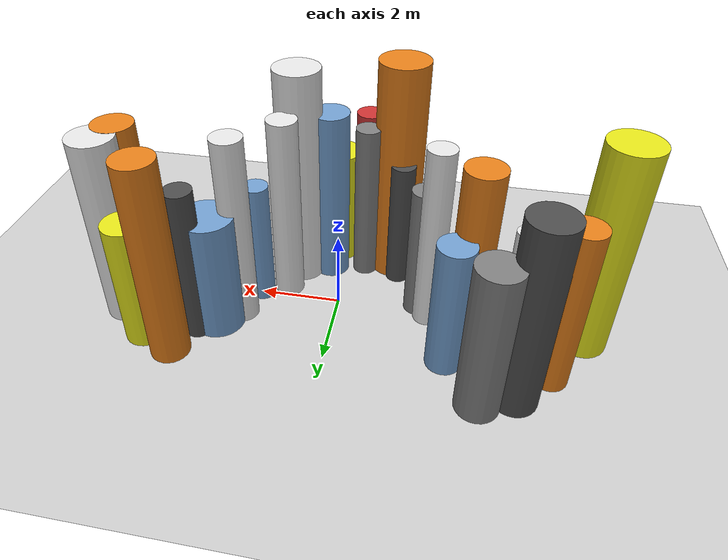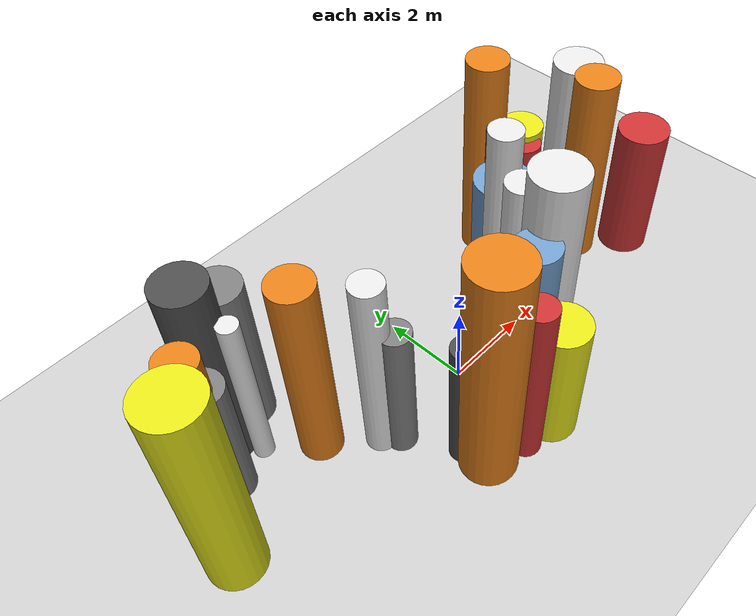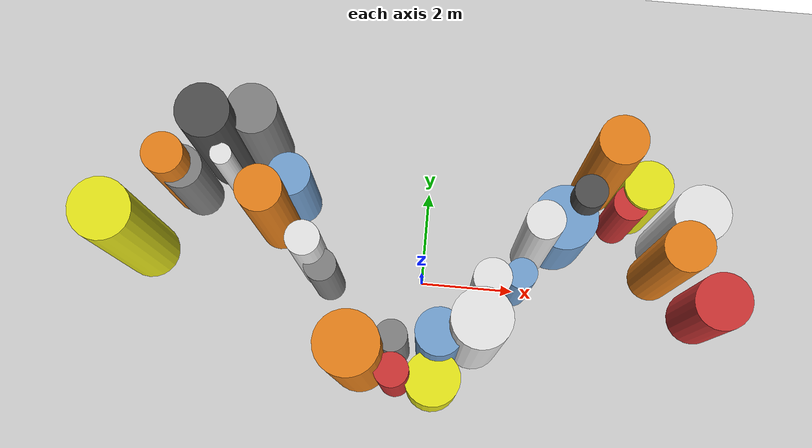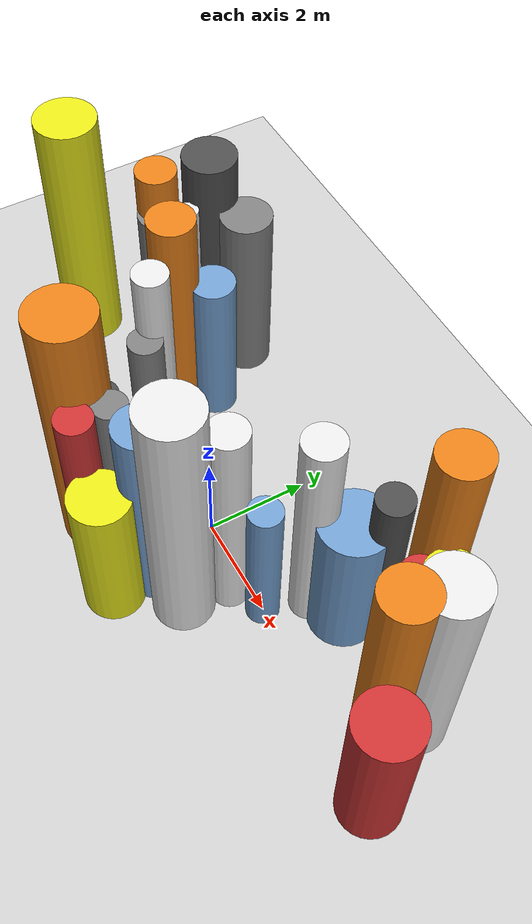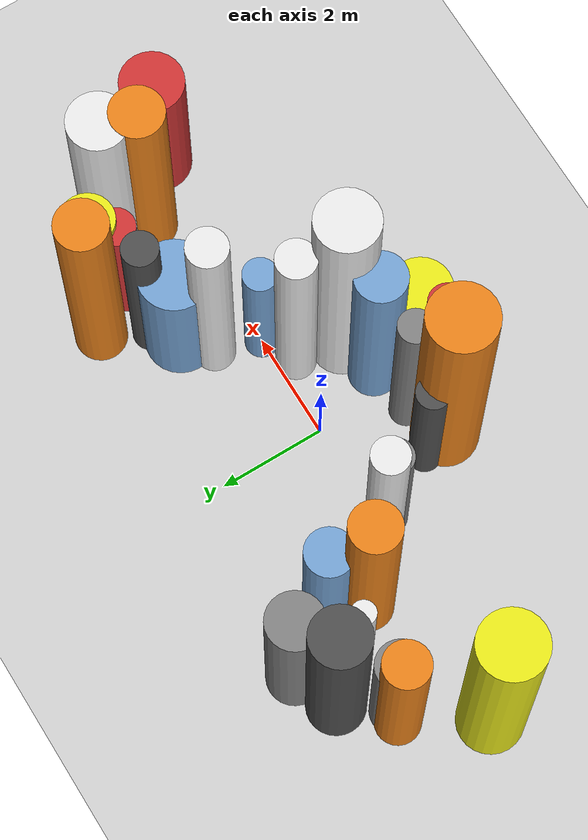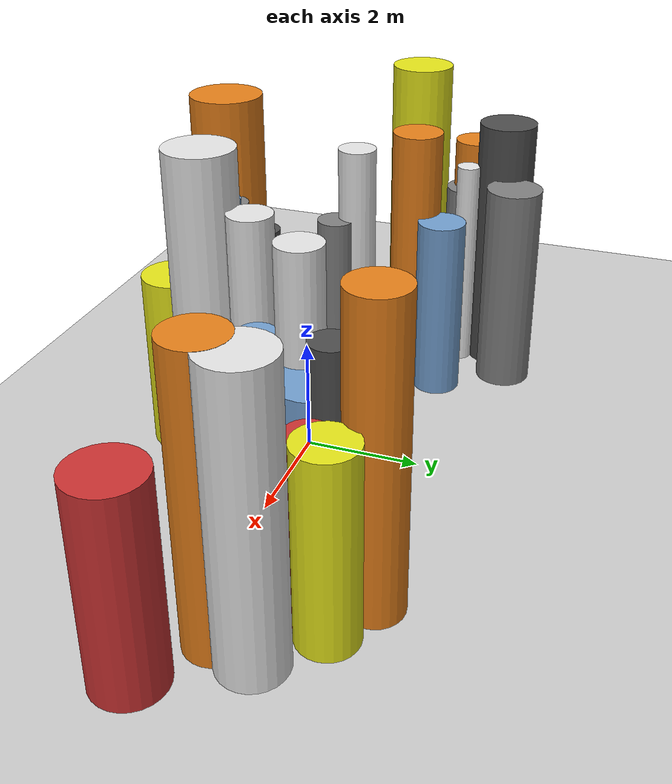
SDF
<?xml version='1.0'?>
<sdf version='1.6'>
  <world name='routeA_rl_v1__dense_recovery__rl_test__s_turn_multi_obstacle__000117'>
    <!-- Sun light -->
    <light name='sun' type='directional'>
      <cast_shadows>1</cast_shadows>
      <pose>0 0 10 0 0 0</pose>
      <diffuse>0.8 0.8 0.8 1</diffuse>
      <specular>0.2 0.2 0.2 1</specular>
      <attenuation>
        <range>1000</range>
        <constant>0.9</constant>
        <linear>0.01</linear>
        <quadratic>0.001</quadratic>
      </attenuation>
      <direction>-0.5 0.1 -0.9</direction>
    </light>

    <!-- Ground plane -->
    <model name='ground_plane'>
      <static>1</static>
      <link name='link'>
        <collision name='collision'>
          <geometry>
            <plane>
              <normal>0 0 1</normal>
              <size>100 100</size>
            </plane>
          </geometry>
          <surface>
            <contact>
              <collide_bitmask>65535</collide_bitmask>
              <ode/>
            </contact>
            <friction>
              <ode>
                <mu>100</mu>
                <mu2>50</mu2>
              </ode>
              <torsional><ode/></torsional>
            </friction>
            <bounce/>
          </surface>
          <max_contacts>10</max_contacts>
        </collision>
        <visual name='visual'>
          <cast_shadows>0</cast_shadows>
          <geometry>
            <plane>
              <normal>0 0 1</normal>
              <size>100 100</size>
            </plane>
          </geometry>
          <material>
            <script>
              <uri>file://media/materials/scripts/gazebo.material</uri>
              <n>Gazebo/Grey</n>
            </script>
          </material>
        </visual>
      </link>
    </model>

    <!-- Environment -->
    <magnetic_field>6e-06 2.3e-05 -4.2e-05</magnetic_field>
    <atmosphere type='adiabatic'/>
    <physics name='default_physics' default='0' type='ode'>
      <gravity>0 0 -9.8</gravity>
      <max_step_size>0.004</max_step_size>
      <real_time_factor>1</real_time_factor>
      <real_time_update_rate>250</real_time_update_rate>
    </physics>
    <scene>
      <ambient>0.4 0.4 0.4 1</ambient>
      <background>0.7 0.7 0.7 1</background>
      <shadows>1</shadows>
    </scene>
    <wind/>
    <spherical_coordinates>
      <surface_model>EARTH_WGS84</surface_model>
      <latitude_deg>0</latitude_deg>
      <longitude_deg>0</longitude_deg>
      <elevation>0</elevation>
      <heading_deg>0</heading_deg>
    </spherical_coordinates>

    <!-- ============ OBSTACLES (28) ============ -->
    <model name='s_turn_obs_0'>
      <static>1</static>
      <link name='link'>
        <visual name='visual'>
          <geometry>
            <cylinder>
              <radius>0.6042</radius>
              <length>5.4072</length>
            </cylinder>
          </geometry>
          <material>
            <script>
              <n>Gazebo/Yellow</n>
              <uri>file://media/materials/scripts/gazebo.material</uri>
            </script>
            <ambient>0.9 0.9 0.1 1</ambient>
          </material>
        </visual>
        <collision name='collision'>
          <geometry>
            <cylinder>
              <radius>0.6042</radius>
              <length>5.4072</length>
            </cylinder>
          </geometry>
          <max_contacts>10</max_contacts>
          <surface>
            <contact><ode/></contact>
            <bounce/>
            <friction>
              <ode><mu>1</mu><mu2>1</mu2></ode>
              <torsional><ode/></torsional>
            </friction>
          </surface>
        </collision>
      </link>
      <pose>-6.0000 0.2561 2.7036 0 0 0.0000</pose>
    </model>

    <model name='s_turn_obs_1'>
      <static>1</static>
      <link name='link'>
        <visual name='visual'>
          <geometry>
            <cylinder>
              <radius>0.4163</radius>
              <length>4.2317</length>
            </cylinder>
          </geometry>
          <material>
            <script>
              <n>Gazebo/Orange</n>
              <uri>file://media/materials/scripts/gazebo.material</uri>
            </script>
            <ambient>0.9 0.5 0.1 1</ambient>
          </material>
        </visual>
        <collision name='collision'>
          <geometry>
            <cylinder>
              <radius>0.4163</radius>
              <length>4.2317</length>
            </cylinder>
          </geometry>
          <max_contacts>10</max_contacts>
          <surface>
            <contact><ode/></contact>
            <bounce/>
            <friction>
              <ode><mu>1</mu><mu2>1</mu2></ode>
              <torsional><ode/></torsional>
            </friction>
          </surface>
        </collision>
      </link>
      <pose>-5.2000 1.6293 2.1159 0 0 0.0000</pose>
    </model>

    <model name='s_turn_obs_2'>
      <static>1</static>
      <link name='link'>
        <visual name='visual'>
          <geometry>
            <cylinder>
              <radius>0.5339</radius>
              <length>4.8786</length>
            </cylinder>
          </geometry>
          <material>
            <script>
              <n>Gazebo/DarkGrey</n>
              <uri>file://media/materials/scripts/gazebo.material</uri>
            </script>
            <ambient>0.3 0.3 0.3 1</ambient>
          </material>
        </visual>
        <collision name='collision'>
          <geometry>
            <cylinder>
              <radius>0.5339</radius>
              <length>4.8786</length>
            </cylinder>
          </geometry>
          <max_contacts>10</max_contacts>
          <surface>
            <contact><ode/></contact>
            <bounce/>
            <friction>
              <ode><mu>1</mu><mu2>1</mu2></ode>
              <torsional><ode/></torsional>
            </friction>
          </surface>
        </collision>
      </link>
      <pose>-4.4000 2.3847 2.4393 0 0 0.0000</pose>
    </model>

    <model name='s_turn_obs_3'>
      <static>1</static>
      <link name='link'>
        <visual name='visual'>
          <geometry>
            <cylinder>
              <radius>0.5118</radius>
              <length>3.9014</length>
            </cylinder>
          </geometry>
          <material>
            <script>
              <n>Gazebo/Grey</n>
              <uri>file://media/materials/scripts/gazebo.material</uri>
            </script>
            <ambient>0.5 0.5 0.5 1</ambient>
          </material>
        </visual>
        <collision name='collision'>
          <geometry>
            <cylinder>
              <radius>0.5118</radius>
              <length>3.9014</length>
            </cylinder>
          </geometry>
          <max_contacts>10</max_contacts>
          <surface>
            <contact><ode/></contact>
            <bounce/>
            <friction>
              <ode><mu>1</mu><mu2>1</mu2></ode>
              <torsional><ode/></torsional>
            </friction>
          </surface>
        </collision>
      </link>
      <pose>-3.6000 2.7268 1.9507 0 0 0.0000</pose>
    </model>

    <model name='s_turn_obs_4'>
      <static>1</static>
      <link name='link'>
        <visual name='visual'>
          <geometry>
            <cylinder>
              <radius>0.4387</radius>
              <length>3.4068</length>
            </cylinder>
          </geometry>
          <material>
            <script>
              <n>Gazebo/Blue</n>
              <uri>file://media/materials/scripts/gazebo.material</uri>
            </script>
            <ambient>0.447 0.624 0.812 1</ambient>
          </material>
        </visual>
        <collision name='collision'>
          <geometry>
            <cylinder>
              <radius>0.4387</radius>
              <length>3.4068</length>
            </cylinder>
          </geometry>
          <max_contacts>10</max_contacts>
          <surface>
            <contact><ode/></contact>
            <bounce/>
            <friction>
              <ode><mu>1</mu><mu2>1</mu2></ode>
              <torsional><ode/></torsional>
            </friction>
          </surface>
        </collision>
      </link>
      <pose>-2.8000 1.5773 1.7034 0 0 0.0000</pose>
    </model>

    <model name='s_turn_obs_5'>
      <static>1</static>
      <link name='link'>
        <visual name='visual'>
          <geometry>
            <cylinder>
              <radius>0.3318</radius>
              <length>3.5203</length>
            </cylinder>
          </geometry>
          <material>
            <script>
              <n>Gazebo/Grey</n>
              <uri>file://media/materials/scripts/gazebo.material</uri>
            </script>
            <ambient>0.5 0.5 0.5 1</ambient>
          </material>
        </visual>
        <collision name='collision'>
          <geometry>
            <cylinder>
              <radius>0.3318</radius>
              <length>3.5203</length>
            </cylinder>
          </geometry>
          <max_contacts>10</max_contacts>
          <surface>
            <contact><ode/></contact>
            <bounce/>
            <friction>
              <ode><mu>1</mu><mu2>1</mu2></ode>
              <torsional><ode/></torsional>
            </friction>
          </surface>
        </collision>
      </link>
      <pose>-2.0000 -0.1958 1.7601 0 0 0.0000</pose>
    </model>

    <model name='s_turn_obs_6'>
      <static>1</static>
      <link name='link'>
        <visual name='visual'>
          <geometry>
            <cylinder>
              <radius>0.6227</radius>
              <length>5.8975</length>
            </cylinder>
          </geometry>
          <material>
            <script>
              <n>Gazebo/Orange</n>
              <uri>file://media/materials/scripts/gazebo.material</uri>
            </script>
            <ambient>0.9 0.5 0.1 1</ambient>
          </material>
        </visual>
        <collision name='collision'>
          <geometry>
            <cylinder>
              <radius>0.6227</radius>
              <length>5.8975</length>
            </cylinder>
          </geometry>
          <max_contacts>10</max_contacts>
          <surface>
            <contact><ode/></contact>
            <bounce/>
            <friction>
              <ode><mu>1</mu><mu2>1</mu2></ode>
              <torsional><ode/></torsional>
            </friction>
          </surface>
        </collision>
      </link>
      <pose>-1.2000 -1.8635 2.9488 0 0 0.0000</pose>
    </model>

    <model name='s_turn_obs_7'>
      <static>1</static>
      <link name='link'>
        <visual name='visual'>
          <geometry>
            <cylinder>
              <radius>0.3427</radius>
              <length>4.3540</length>
            </cylinder>
          </geometry>
          <material>
            <script>
              <n>Gazebo/Red</n>
              <uri>file://media/materials/scripts/gazebo.material</uri>
            </script>
            <ambient>0.8 0.2 0.2 1</ambient>
          </material>
        </visual>
        <collision name='collision'>
          <geometry>
            <cylinder>
              <radius>0.3427</radius>
              <length>4.3540</length>
            </cylinder>
          </geometry>
          <max_contacts>10</max_contacts>
          <surface>
            <contact><ode/></contact>
            <bounce/>
            <friction>
              <ode><mu>1</mu><mu2>1</mu2></ode>
              <torsional><ode/></torsional>
            </friction>
          </surface>
        </collision>
      </link>
      <pose>-0.4000 -2.1818 2.1770 0 0 0.0000</pose>
    </model>

    <model name='s_turn_obs_8'>
      <static>1</static>
      <link name='link'>
        <visual name='visual'>
          <geometry>
            <cylinder>
              <radius>0.5648</radius>
              <length>3.1907</length>
            </cylinder>
          </geometry>
          <material>
            <script>
              <n>Gazebo/Yellow</n>
              <uri>file://media/materials/scripts/gazebo.material</uri>
            </script>
            <ambient>0.9 0.9 0.1 1</ambient>
          </material>
        </visual>
        <collision name='collision'>
          <geometry>
            <cylinder>
              <radius>0.5648</radius>
              <length>3.1907</length>
            </cylinder>
          </geometry>
          <max_contacts>10</max_contacts>
          <surface>
            <contact><ode/></contact>
            <bounce/>
            <friction>
              <ode><mu>1</mu><mu2>1</mu2></ode>
              <torsional><ode/></torsional>
            </friction>
          </surface>
        </collision>
      </link>
      <pose>0.4000 -2.2193 1.5953 0 0 0.0000</pose>
    </model>

    <model name='s_turn_obs_9'>
      <static>1</static>
      <link name='link'>
        <visual name='visual'>
          <geometry>
            <cylinder>
              <radius>0.5790</radius>
              <length>5.8002</length>
            </cylinder>
          </geometry>
          <material>
            <script>
              <n>Gazebo/White</n>
              <uri>file://media/materials/scripts/gazebo.material</uri>
            </script>
            <ambient>0.9 0.9 0.9 1</ambient>
          </material>
        </visual>
        <collision name='collision'>
          <geometry>
            <cylinder>
              <radius>0.5790</radius>
              <length>5.8002</length>
            </cylinder>
          </geometry>
          <max_contacts>10</max_contacts>
          <surface>
            <contact><ode/></contact>
            <bounce/>
            <friction>
              <ode><mu>1</mu><mu2>1</mu2></ode>
              <torsional><ode/></torsional>
            </friction>
          </surface>
        </collision>
      </link>
      <pose>1.2000 -1.1996 2.9001 0 0 0.0000</pose>
    </model>

    <model name='s_turn_obs_10'>
      <static>1</static>
      <link name='link'>
        <visual name='visual'>
          <geometry>
            <cylinder>
              <radius>0.3132</radius>
              <length>3.2839</length>
            </cylinder>
          </geometry>
          <material>
            <script>
              <n>Gazebo/Blue</n>
              <uri>file://media/materials/scripts/gazebo.material</uri>
            </script>
            <ambient>0.447 0.624 0.812 1</ambient>
          </material>
        </visual>
        <collision name='collision'>
          <geometry>
            <cylinder>
              <radius>0.3132</radius>
              <length>3.2839</length>
            </cylinder>
          </geometry>
          <max_contacts>10</max_contacts>
          <surface>
            <contact><ode/></contact>
            <bounce/>
            <friction>
              <ode><mu>1</mu><mu2>1</mu2></ode>
              <torsional><ode/></torsional>
            </friction>
          </surface>
        </collision>
      </link>
      <pose>2.0000 -0.0012 1.6419 0 0 0.0000</pose>
    </model>

    <model name='s_turn_obs_11'>
      <static>1</static>
      <link name='link'>
        <visual name='visual'>
          <geometry>
            <cylinder>
              <radius>0.6579</radius>
              <length>3.1508</length>
            </cylinder>
          </geometry>
          <material>
            <script>
              <n>Gazebo/Blue</n>
              <uri>file://media/materials/scripts/gazebo.material</uri>
            </script>
            <ambient>0.447 0.624 0.812 1</ambient>
          </material>
        </visual>
        <collision name='collision'>
          <geometry>
            <cylinder>
              <radius>0.6579</radius>
              <length>3.1508</length>
            </cylinder>
          </geometry>
          <max_contacts>10</max_contacts>
          <surface>
            <contact><ode/></contact>
            <bounce/>
            <friction>
              <ode><mu>1</mu><mu2>1</mu2></ode>
              <torsional><ode/></torsional>
            </friction>
          </surface>
        </collision>
      </link>
      <pose>2.8000 1.2186 1.5754 0 0 0.0000</pose>
    </model>

    <model name='s_turn_obs_12'>
      <static>1</static>
      <link name='link'>
        <visual name='visual'>
          <geometry>
            <cylinder>
              <radius>0.4770</radius>
              <length>5.2173</length>
            </cylinder>
          </geometry>
          <material>
            <script>
              <n>Gazebo/Orange</n>
              <uri>file://media/materials/scripts/gazebo.material</uri>
            </script>
            <ambient>0.9 0.5 0.1 1</ambient>
          </material>
        </visual>
        <collision name='collision'>
          <geometry>
            <cylinder>
              <radius>0.4770</radius>
              <length>5.2173</length>
            </cylinder>
          </geometry>
          <max_contacts>10</max_contacts>
          <surface>
            <contact><ode/></contact>
            <bounce/>
            <friction>
              <ode><mu>1</mu><mu2>1</mu2></ode>
              <torsional><ode/></torsional>
            </friction>
          </surface>
        </collision>
      </link>
      <pose>3.6000 2.4142 2.6087 0 0 0.0000</pose>
    </model>

    <model name='s_turn_obs_13'>
      <static>1</static>
      <link name='link'>
        <visual name='visual'>
          <geometry>
            <cylinder>
              <radius>0.4951</radius>
              <length>3.2734</length>
            </cylinder>
          </geometry>
          <material>
            <script>
              <n>Gazebo/Yellow</n>
              <uri>file://media/materials/scripts/gazebo.material</uri>
            </script>
            <ambient>0.9 0.9 0.1 1</ambient>
          </material>
        </visual>
        <collision name='collision'>
          <geometry>
            <cylinder>
              <radius>0.4951</radius>
              <length>3.2734</length>
            </cylinder>
          </geometry>
          <max_contacts>10</max_contacts>
          <surface>
            <contact><ode/></contact>
            <bounce/>
            <friction>
              <ode><mu>1</mu><mu2>1</mu2></ode>
              <torsional><ode/></torsional>
            </friction>
          </surface>
        </collision>
      </link>
      <pose>4.4000 1.9913 1.6367 0 0 0.0000</pose>
    </model>

    <model name='s_turn_obs_14'>
      <static>1</static>
      <link name='link'>
        <visual name='visual'>
          <geometry>
            <cylinder>
              <radius>0.5501</radius>
              <length>4.9042</length>
            </cylinder>
          </geometry>
          <material>
            <script>
              <n>Gazebo/White</n>
              <uri>file://media/materials/scripts/gazebo.material</uri>
            </script>
            <ambient>0.9 0.9 0.9 1</ambient>
          </material>
        </visual>
        <collision name='collision'>
          <geometry>
            <cylinder>
              <radius>0.5501</radius>
              <length>4.9042</length>
            </cylinder>
          </geometry>
          <max_contacts>10</max_contacts>
          <surface>
            <contact><ode/></contact>
            <bounce/>
            <friction>
              <ode><mu>1</mu><mu2>1</mu2></ode>
              <torsional><ode/></torsional>
            </friction>
          </surface>
        </collision>
      </link>
      <pose>5.2000 1.2025 2.4521 0 0 0.0000</pose>
    </model>

    <model name='s_turn_obs_15'>
      <static>1</static>
      <link name='link'>
        <visual name='visual'>
          <geometry>
            <cylinder>
              <radius>0.5857</radius>
              <length>3.3994</length>
            </cylinder>
          </geometry>
          <material>
            <script>
              <n>Gazebo/Red</n>
              <uri>file://media/materials/scripts/gazebo.material</uri>
            </script>
            <ambient>0.8 0.2 0.2 1</ambient>
          </material>
        </visual>
        <collision name='collision'>
          <geometry>
            <cylinder>
              <radius>0.5857</radius>
              <length>3.3994</length>
            </cylinder>
          </geometry>
          <max_contacts>10</max_contacts>
          <surface>
            <contact><ode/></contact>
            <bounce/>
            <friction>
              <ode><mu>1</mu><mu2>1</mu2></ode>
              <torsional><ode/></torsional>
            </friction>
          </surface>
        </collision>
      </link>
      <pose>6.0000 -0.2344 1.6997 0 0 0.0000</pose>
    </model>

    <model name='s_turn_obs2_0'>
      <static>1</static>
      <link name='link'>
        <visual name='visual'>
          <geometry>
            <cylinder>
              <radius>0.4498</radius>
              <length>3.3084</length>
            </cylinder>
          </geometry>
          <material>
            <script>
              <n>Gazebo/Grey</n>
              <uri>file://media/materials/scripts/gazebo.material</uri>
            </script>
            <ambient>0.5 0.5 0.5 1</ambient>
          </material>
        </visual>
        <collision name='collision'>
          <geometry>
            <cylinder>
              <radius>0.4498</radius>
              <length>3.3084</length>
            </cylinder>
          </geometry>
          <max_contacts>10</max_contacts>
          <surface>
            <contact><ode/></contact>
            <bounce/>
            <friction>
              <ode><mu>1</mu><mu2>1</mu2></ode>
              <torsional><ode/></torsional>
            </friction>
          </surface>
        </collision>
      </link>
      <pose>-5.0000 1.5688 1.6542 0 0 0.0000</pose>
    </model>

    <model name='s_turn_obs2_1'>
      <static>1</static>
      <link name='link'>
        <visual name='visual'>
          <geometry>
            <cylinder>
              <radius>0.2178</radius>
              <length>4.0590</length>
            </cylinder>
          </geometry>
          <material>
            <script>
              <n>Gazebo/White</n>
              <uri>file://media/materials/scripts/gazebo.material</uri>
            </script>
            <ambient>0.9 0.9 0.9 1</ambient>
          </material>
        </visual>
        <collision name='collision'>
          <geometry>
            <cylinder>
              <radius>0.2178</radius>
              <length>4.0590</length>
            </cylinder>
          </geometry>
          <max_contacts>10</max_contacts>
          <surface>
            <contact><ode/></contact>
            <bounce/>
            <friction>
              <ode><mu>1</mu><mu2>1</mu2></ode>
              <torsional><ode/></torsional>
            </friction>
          </surface>
        </collision>
      </link>
      <pose>-4.0909 1.7394 2.0295 0 0 0.0000</pose>
    </model>

    <model name='s_turn_obs2_2'>
      <static>1</static>
      <link name='link'>
        <visual name='visual'>
          <geometry>
            <cylinder>
              <radius>0.4593</radius>
              <length>4.9282</length>
            </cylinder>
          </geometry>
          <material>
            <script>
              <n>Gazebo/Orange</n>
              <uri>file://media/materials/scripts/gazebo.material</uri>
            </script>
            <ambient>0.9 0.5 0.1 1</ambient>
          </material>
        </visual>
        <collision name='collision'>
          <geometry>
            <cylinder>
              <radius>0.4593</radius>
              <length>4.9282</length>
            </cylinder>
          </geometry>
          <max_contacts>10</max_contacts>
          <surface>
            <contact><ode/></contact>
            <bounce/>
            <friction>
              <ode><mu>1</mu><mu2>1</mu2></ode>
              <torsional><ode/></torsional>
            </friction>
          </surface>
        </collision>
      </link>
      <pose>-3.1818 0.9759 2.4641 0 0 0.0000</pose>
    </model>

    <model name='s_turn_obs2_3'>
      <static>1</static>
      <link name='link'>
        <visual name='visual'>
          <geometry>
            <cylinder>
              <radius>0.3401</radius>
              <length>4.8112</length>
            </cylinder>
          </geometry>
          <material>
            <script>
              <n>Gazebo/White</n>
              <uri>file://media/materials/scripts/gazebo.material</uri>
            </script>
            <ambient>0.9 0.9 0.9 1</ambient>
          </material>
        </visual>
        <collision name='collision'>
          <geometry>
            <cylinder>
              <radius>0.3401</radius>
              <length>4.8112</length>
            </cylinder>
          </geometry>
          <max_contacts>10</max_contacts>
          <surface>
            <contact><ode/></contact>
            <bounce/>
            <friction>
              <ode><mu>1</mu><mu2>1</mu2></ode>
              <torsional><ode/></torsional>
            </friction>
          </surface>
        </collision>
      </link>
      <pose>-2.2727 0.1209 2.4056 0 0 0.0000</pose>
    </model>

    <model name='s_turn_obs2_4'>
      <static>1</static>
      <link name='link'>
        <visual name='visual'>
          <geometry>
            <cylinder>
              <radius>0.3062</radius>
              <length>3.4330</length>
            </cylinder>
          </geometry>
          <material>
            <script>
              <n>Gazebo/DarkGrey</n>
              <uri>file://media/materials/scripts/gazebo.material</uri>
            </script>
            <ambient>0.3 0.3 0.3 1</ambient>
          </material>
        </visual>
        <collision name='collision'>
          <geometry>
            <cylinder>
              <radius>0.3062</radius>
              <length>3.4330</length>
            </cylinder>
          </geometry>
          <max_contacts>10</max_contacts>
          <surface>
            <contact><ode/></contact>
            <bounce/>
            <friction>
              <ode><mu>1</mu><mu2>1</mu2></ode>
              <torsional><ode/></torsional>
            </friction>
          </surface>
        </collision>
      </link>
      <pose>-1.3636 -1.3411 1.7165 0 0 0.0000</pose>
    </model>

    <model name='s_turn_obs2_5'>
      <static>1</static>
      <link name='link'>
        <visual name='visual'>
          <geometry>
            <cylinder>
              <radius>0.3171</radius>
              <length>4.2601</length>
            </cylinder>
          </geometry>
          <material>
            <script>
              <n>Gazebo/Grey</n>
              <uri>file://media/materials/scripts/gazebo.material</uri>
            </script>
            <ambient>0.5 0.5 0.5 1</ambient>
          </material>
        </visual>
        <collision name='collision'>
          <geometry>
            <cylinder>
              <radius>0.3171</radius>
              <length>4.2601</length>
            </cylinder>
          </geometry>
          <max_contacts>10</max_contacts>
          <surface>
            <contact><ode/></contact>
            <bounce/>
            <friction>
              <ode><mu>1</mu><mu2>1</mu2></ode>
              <torsional><ode/></torsional>
            </friction>
          </surface>
        </collision>
      </link>
      <pose>-0.4545 -1.5280 2.1300 0 0 0.0000</pose>
    </model>

    <model name='s_turn_obs2_6'>
      <static>1</static>
      <link name='link'>
        <visual name='visual'>
          <geometry>
            <cylinder>
              <radius>0.4696</radius>
              <length>4.6590</length>
            </cylinder>
          </geometry>
          <material>
            <script>
              <n>Gazebo/Blue</n>
              <uri>file://media/materials/scripts/gazebo.material</uri>
            </script>
            <ambient>0.447 0.624 0.812 1</ambient>
          </material>
        </visual>
        <collision name='collision'>
          <geometry>
            <cylinder>
              <radius>0.4696</radius>
              <length>4.6590</length>
            </cylinder>
          </geometry>
          <max_contacts>10</max_contacts>
          <surface>
            <contact><ode/></contact>
            <bounce/>
            <friction>
              <ode><mu>1</mu><mu2>1</mu2></ode>
              <torsional><ode/></torsional>
            </friction>
          </surface>
        </collision>
      </link>
      <pose>0.4545 -1.4089 2.3295 0 0 0.0000</pose>
    </model>

    <model name='s_turn_obs2_7'>
      <static>1</static>
      <link name='link'>
        <visual name='visual'>
          <geometry>
            <cylinder>
              <radius>0.3696</radius>
              <length>4.9146</length>
            </cylinder>
          </geometry>
          <material>
            <script>
              <n>Gazebo/White</n>
              <uri>file://media/materials/scripts/gazebo.material</uri>
            </script>
            <ambient>0.9 0.9 0.9 1</ambient>
          </material>
        </visual>
        <collision name='collision'>
          <geometry>
            <cylinder>
              <radius>0.3696</radius>
              <length>4.9146</length>
            </cylinder>
          </geometry>
          <max_contacts>10</max_contacts>
          <surface>
            <contact><ode/></contact>
            <bounce/>
            <friction>
              <ode><mu>1</mu><mu2>1</mu2></ode>
              <torsional><ode/></torsional>
            </friction>
          </surface>
        </collision>
      </link>
      <pose>1.3636 -0.3319 2.4573 0 0 0.0000</pose>
    </model>

    <model name='s_turn_obs2_8'>
      <static>1</static>
      <link name='link'>
        <visual name='visual'>
          <geometry>
            <cylinder>
              <radius>0.3771</radius>
              <length>4.9827</length>
            </cylinder>
          </geometry>
          <material>
            <script>
              <n>Gazebo/White</n>
              <uri>file://media/materials/scripts/gazebo.material</uri>
            </script>
            <ambient>0.9 0.9 0.9 1</ambient>
          </material>
        </visual>
        <collision name='collision'>
          <geometry>
            <cylinder>
              <radius>0.3771</radius>
              <length>4.9827</length>
            </cylinder>
          </geometry>
          <max_contacts>10</max_contacts>
          <surface>
            <contact><ode/></contact>
            <bounce/>
            <friction>
              <ode><mu>1</mu><mu2>1</mu2></ode>
              <torsional><ode/></torsional>
            </friction>
          </surface>
        </collision>
      </link>
      <pose>2.2727 0.8224 2.4914 0 0 0.0000</pose>
    </model>

    <model name='s_turn_obs2_9'>
      <static>1</static>
      <link name='link'>
        <visual name='visual'>
          <geometry>
            <cylinder>
              <radius>0.3336</radius>
              <length>4.0406</length>
            </cylinder>
          </geometry>
          <material>
            <script>
              <n>Gazebo/DarkGrey</n>
              <uri>file://media/materials/scripts/gazebo.material</uri>
            </script>
            <ambient>0.3 0.3 0.3 1</ambient>
          </material>
        </visual>
        <collision name='collision'>
          <geometry>
            <cylinder>
              <radius>0.3336</radius>
              <length>4.0406</length>
            </cylinder>
          </geometry>
          <max_contacts>10</max_contacts>
          <surface>
            <contact><ode/></contact>
            <bounce/>
            <friction>
              <ode><mu>1</mu><mu2>1</mu2></ode>
              <torsional><ode/></torsional>
            </friction>
          </surface>
        </collision>
      </link>
      <pose>3.1818 1.6205 2.0203 0 0 0.0000</pose>
    </model>

    <model name='s_turn_obs2_10'>
      <static>1</static>
      <link name='link'>
        <visual name='visual'>
          <geometry>
            <cylinder>
              <radius>0.3629</radius>
              <length>3.1271</length>
            </cylinder>
          </geometry>
          <material>
            <script>
              <n>Gazebo/Red</n>
              <uri>file://media/materials/scripts/gazebo.material</uri>
            </script>
            <ambient>0.8 0.2 0.2 1</ambient>
          </material>
        </visual>
        <collision name='collision'>
          <geometry>
            <cylinder>
              <radius>0.3629</radius>
              <length>3.1271</length>
            </cylinder>
          </geometry>
          <max_contacts>10</max_contacts>
          <surface>
            <contact><ode/></contact>
            <bounce/>
            <friction>
              <ode><mu>1</mu><mu2>1</mu2></ode>
              <torsional><ode/></torsional>
            </friction>
          </surface>
        </collision>
      </link>
      <pose>4.0909 1.6276 1.5636 0 0 0.0000</pose>
    </model>

    <model name='s_turn_obs2_11'>
      <static>1</static>
      <link name='link'>
        <visual name='visual'>
          <geometry>
            <cylinder>
              <radius>0.4935</radius>
              <length>4.9082</length>
            </cylinder>
          </geometry>
          <material>
            <script>
              <n>Gazebo/Orange</n>
              <uri>file://media/materials/scripts/gazebo.material</uri>
            </script>
            <ambient>0.9 0.5 0.1 1</ambient>
          </material>
        </visual>
        <collision name='collision'>
          <geometry>
            <cylinder>
              <radius>0.4935</radius>
              <length>4.9082</length>
            </cylinder>
          </geometry>
          <max_contacts>10</max_contacts>
          <surface>
            <contact><ode/></contact>
            <bounce/>
            <friction>
              <ode><mu>1</mu><mu2>1</mu2></ode>
              <torsional><ode/></torsional>
            </friction>
          </surface>
        </collision>
      </link>
      <pose>5.0000 0.5593 2.4541 0 0 0.0000</pose>
    </model>

    <!-- GUI camera -->
    <gui fullscreen='0'>
      <camera name='user_camera'>
        <pose>-15 0 18 0 0.85 0.15</pose>
        <view_controller>orbit</view_controller>
        <projection_type>perspective</projection_type>
      </camera>
    </gui>
  </world>
</sdf>
